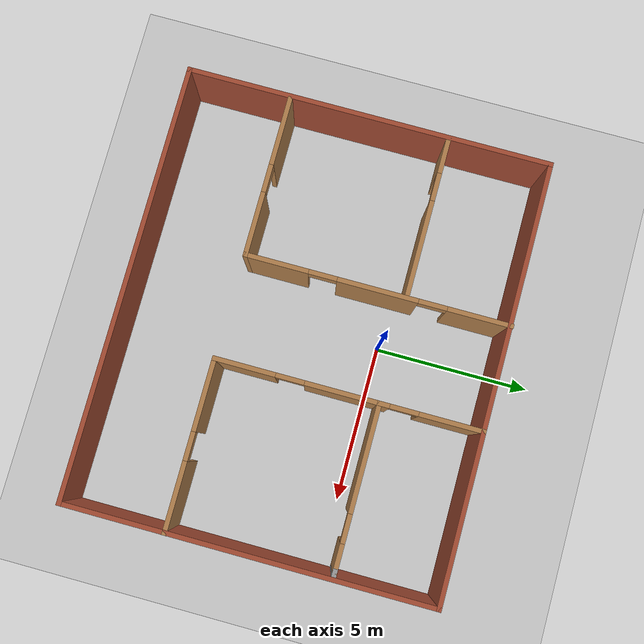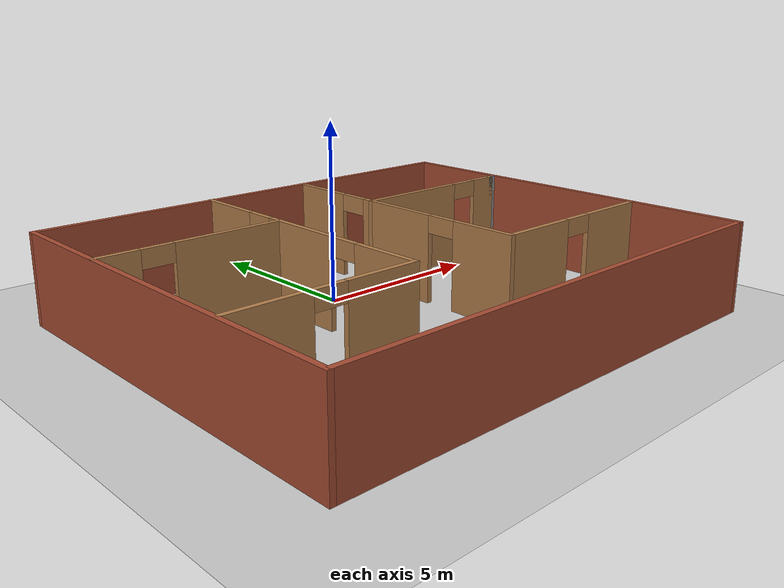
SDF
<sdf version="1.7">
 <world name="default">
  <light name="sun" type="directional">
   <pose>0 0 10 0 -0 0</pose>
   <diffuse>0.8 0.8 0.8 1</diffuse>
   <specular>0.2 0.2 0.2 1</specular>
   <attenuation>
    <range>1000</range>
    <constant>0.9</constant>
    <linear>0.01</linear>
    <quadratic>0.001</quadratic>
   </attenuation>
   <direction>-0.5 0.1 -0.9</direction>
   <spot><inner_angle>0</inner_angle><outer_angle>0</outer_angle><falloff>0</falloff></spot>
  </light>
  <model name="ground_plane">
   <static>1</static>
   <link name="link">
    <collision name="collision">
     <geometry><plane><normal>0 0 1</normal><size>100 100</size></plane></geometry>
     <surface><friction><ode><mu>100</mu><mu2>50</mu2></ode></friction></surface>
    </collision>
    <visual name="visual">
     <cast_shadows>0</cast_shadows>
     <geometry><plane><normal>0 0 1</normal><size>100 100</size></plane></geometry>
     <material>
      <script><uri>file://media/materials/scripts/gazebo.material</uri><name>Gazebo/Grey</name></script>
     </material>
    </visual>
   </link>
  </model>
  <gravity>0 0 -9.8</gravity>
  <magnetic_field>6e-06 2.3e-05 -4.2e-05</magnetic_field>
  <atmosphere type="adiabatic"/>
  <physics type="ode">
   <max_step_size>0.001</max_step_size>
   <real_time_factor>1</real_time_factor>
   <real_time_update_rate>1000</real_time_update_rate>
  </physics>
  <scene><ambient>0.4 0.4 0.4 1</ambient><background>0.7 0.7 0.7 1</background><shadows>1</shadows></scene>
  <audio><device>default</device></audio>
  <spherical_coordinates>
   <surface_model>EARTH_WGS84</surface_model>
   <latitude_deg>0</latitude_deg>
   <longitude_deg>0</longitude_deg>
   <elevation>0</elevation>
   <heading_deg>0</heading_deg>
  </spherical_coordinates>
  <model name="my_floor">
   <pose>0.258296 -2.15374 0 0 -0 0</pose>
   <link name="Wall_11">
    <pose>-4.34645 2.54214 0 0 -0 0</pose>
    <visual name="Wall_11_Visual_0">
     <pose>-2.01715 0 1.25 0 -0 0</pose>
     <geometry><box><size>1.21569 0.15 2.5</size></box></geometry>
     <material>
      <script><uri>file://media/materials/scripts/gazebo.material</uri><name>Gazebo/Wood</name></script>
      <ambient>1 1 1 1</ambient>
     </material>
     <meta><layer>0</layer></meta>
    </visual>
    <collision name="Wall_11_Collision_0">
     <geometry><box><size>1.21569 0.15 2.5</size></box></geometry>
     <pose>-2.01715 0 1.25 0 -0 0</pose>
    </collision>
    <visual name="Wall_11_Visual_1">
     <pose>1.05785 0 1.25 0 -0 0</pose>
     <geometry><box><size>3.13431 0.15 2.5</size></box></geometry>
     <material>
      <script><uri>file://media/materials/scripts/gazebo.material</uri><name>Gazebo/Wood</name></script>
      <ambient>1 1 1 1</ambient>
     </material>
     <meta><layer>0</layer></meta>
    </visual>
    <collision name="Wall_11_Collision_1">
     <geometry><box><size>3.13431 0.15 2.5</size></box></geometry>
     <pose>1.05785 0 1.25 0 -0 0</pose>
    </collision>
    <visual name="Wall_11_Visual_2">
     <pose>-0.959308 0 2.25 0 -0 0</pose>
     <geometry><box><size>0.9 0.15 0.5</size></box></geometry>
     <material>
      <script><uri>file://media/materials/scripts/gazebo.material</uri><name>Gazebo/Wood</name></script>
      <ambient>1 1 1 1</ambient>
     </material>
     <meta><layer>0</layer></meta>
    </visual>
    <collision name="Wall_11_Collision_2">
     <geometry><box><size>0.9 0.15 0.5</size></box></geometry>
     <pose>-0.959308 0 2.25 0 -0 0</pose>
    </collision>
   </link>
   <link name="Wall_13">
    <pose>1.57704 1.6097 0 0 -0 -1.5708</pose>
    <visual name="Wall_13_Visual_0">
     <pose>-3.21389 0 1.25 0 -0 0</pose>
     <geometry><box><size>2.07222 0.15 2.5</size></box></geometry>
     <material>
      <script><uri>file://media/materials/scripts/gazebo.material</uri><name>Gazebo/Wood</name></script>
      <ambient>1 1 1 1</ambient>
     </material>
     <meta><layer>0</layer></meta>
    </visual>
    <collision name="Wall_13_Collision_0">
     <geometry><box><size>2.07222 0.15 2.5</size></box></geometry>
     <pose>-3.21389 0 1.25 0 -0 0</pose>
    </collision>
    <visual name="Wall_13_Visual_1">
     <pose>0.046452 0 1.25 0 -0 0</pose>
     <geometry><box><size>2.64847 0.15 2.5</size></box></geometry>
     <material>
      <script><uri>file://media/materials/scripts/gazebo.material</uri><name>Gazebo/Wood</name></script>
      <ambient>1 1 1 1</ambient>
     </material>
     <meta><layer>0</layer></meta>
    </visual>
    <collision name="Wall_13_Collision_1">
     <geometry><box><size>2.64847 0.15 2.5</size></box></geometry>
     <pose>0.046452 0 1.25 0 -0 0</pose>
    </collision>
    <visual name="Wall_13_Visual_2">
     <pose>3.26034 0 1.25 0 -0 0</pose>
     <geometry><box><size>1.97931 0.15 2.5</size></box></geometry>
     <material>
      <script><uri>file://media/materials/scripts/gazebo.material</uri><name>Gazebo/Wood</name></script>
      <ambient>1 1 1 1</ambient>
     </material>
     <meta><layer>0</layer></meta>
    </visual>
    <collision name="Wall_13_Collision_2">
     <geometry><box><size>1.97931 0.15 2.5</size></box></geometry>
     <pose>3.26034 0 1.25 0 -0 0</pose>
    </collision>
    <visual name="Wall_13_Visual_3">
     <pose>-1.72778 0 2.25 0 -0 0</pose>
     <geometry><box><size>0.9 0.15 0.5</size></box></geometry>
     <material>
      <script><uri>file://media/materials/scripts/gazebo.material</uri><name>Gazebo/Wood</name></script>
      <ambient>1 1 1 1</ambient>
     </material>
     <meta><layer>0</layer></meta>
    </visual>
    <collision name="Wall_13_Collision_3">
     <geometry><box><size>0.9 0.15 0.5</size></box></geometry>
     <pose>-1.72778 0 2.25 0 -0 0</pose>
    </collision>
    <visual name="Wall_13_Visual_4">
     <pose>1.82069 0 2.25 0 -0 0</pose>
     <geometry><box><size>0.9 0.15 0.5</size></box></geometry>
     <material>
      <script><uri>file://media/materials/scripts/gazebo.material</uri><name>Gazebo/Wood</name></script>
      <ambient>1 1 1 1</ambient>
     </material>
     <meta><layer>0</layer></meta>
    </visual>
    <collision name="Wall_13_Collision_4">
     <geometry><box><size>0.9 0.15 0.5</size></box></geometry>
     <pose>1.82069 0 2.25 0 -0 0</pose>
    </collision>
   </link>
   <link name="Wall_14">
    <pose>4.25204 -2.56529 0 0 -0 0</pose>
    <visual name="Wall_14_Visual_0">
     <pose>-1.57624 0 1.25 0 -0 0</pose>
     <geometry><box><size>2.34753 0.15 2.5</size></box></geometry>
     <material>
      <script><uri>file://media/materials/scripts/gazebo.material</uri><name>Gazebo/Wood</name></script>
      <ambient>1 1 1 1</ambient>
     </material>
     <meta><layer>0</layer></meta>
    </visual>
    <collision name="Wall_14_Collision_0">
     <geometry><box><size>2.34753 0.15 2.5</size></box></geometry>
     <pose>-1.57624 0 1.25 0 -0 0</pose>
    </collision>
    <visual name="Wall_14_Visual_1">
     <pose>1.62376 0 1.25 0 -0 0</pose>
     <geometry><box><size>2.25247 0.15 2.5</size></box></geometry>
     <material>
      <script><uri>file://media/materials/scripts/gazebo.material</uri><name>Gazebo/Wood</name></script>
      <ambient>1 1 1 1</ambient>
     </material>
     <meta><layer>0</layer></meta>
    </visual>
    <collision name="Wall_14_Collision_1">
     <geometry><box><size>2.25247 0.15 2.5</size></box></geometry>
     <pose>1.62376 0 1.25 0 -0 0</pose>
    </collision>
    <visual name="Wall_14_Visual_2">
     <pose>0.04753 0 2.25 0 -0 0</pose>
     <geometry><box><size>0.9 0.15 0.5</size></box></geometry>
     <material>
      <script><uri>file://media/materials/scripts/gazebo.material</uri><name>Gazebo/Wood</name></script>
      <ambient>1 1 1 1</ambient>
     </material>
     <meta><layer>0</layer></meta>
    </visual>
    <collision name="Wall_14_Collision_2">
     <geometry><box><size>0.9 0.15 0.5</size></box></geometry>
     <pose>0.04753 0 2.25 0 -0 0</pose>
    </collision>
   </link>
   <link name="Wall_16">
    <pose>4.12704 2.57273 0 0 -0 0</pose>
    <visual name="Wall_16_Visual_0">
     <pose>-0.900611 0 1.25 0 -0 0</pose>
     <geometry><box><size>3.44878 0.15 2.5</size></box></geometry>
     <material>
      <script><uri>file://media/materials/scripts/gazebo.material</uri><name>Gazebo/Wood</name></script>
      <ambient>1 1 1 1</ambient>
     </material>
     <meta><layer>0</layer></meta>
    </visual>
    <collision name="Wall_16_Collision_0">
     <geometry><box><size>3.44878 0.15 2.5</size></box></geometry>
     <pose>-0.900611 0 1.25 0 -0 0</pose>
    </collision>
    <visual name="Wall_16_Visual_1">
     <pose>2.17439 0 1.25 0 -0 0</pose>
     <geometry><box><size>0.901222 0.15 2.5</size></box></geometry>
     <material>
      <script><uri>file://media/materials/scripts/gazebo.material</uri><name>Gazebo/Wood</name></script>
      <ambient>1 1 1 1</ambient>
     </material>
     <meta><layer>0</layer></meta>
    </visual>
    <collision name="Wall_16_Collision_1">
     <geometry><box><size>0.901222 0.15 2.5</size></box></geometry>
     <pose>2.17439 0 1.25 0 -0 0</pose>
    </collision>
    <visual name="Wall_16_Visual_2">
     <pose>1.27378 0 2.25 0 -0 0</pose>
     <geometry><box><size>0.9 0.15 0.5</size></box></geometry>
     <material>
      <script><uri>file://media/materials/scripts/gazebo.material</uri><name>Gazebo/Wood</name></script>
      <ambient>1 1 1 1</ambient>
     </material>
     <meta><layer>0</layer></meta>
    </visual>
    <collision name="Wall_16_Collision_2">
     <geometry><box><size>0.9 0.15 0.5</size></box></geometry>
     <pose>1.27378 0 2.25 0 -0 0</pose>
    </collision>
   </link>
   <link name="Wall_18">
    <collision name="Wall_18_Collision">
     <geometry><box><size>0.25 0.15 2.5</size></box></geometry>
     <pose>0 0 1.25 0 -0 0</pose>
    </collision>
    <visual name="Wall_18_Visual">
     <pose>0 0 1.25 0 -0 0</pose>
     <geometry><box><size>0.25 0.15 2.5</size></box></geometry>
     <material>
      <script><uri>file://media/materials/scripts/gazebo.material</uri><name>Gazebo/Grey</name></script>
      <ambient>1 1 1 1</ambient>
     </material>
     <meta><layer>0</layer></meta>
    </visual>
    <pose>6.72704 2.57273 0 0 -0 0</pose>
   </link>
   <link name="Wall_3">
    <collision name="Wall_3_Collision">
     <geometry><box><size>11.75 0.15 2.5</size></box></geometry>
     <pose>0 0 1.25 0 -0 0</pose>
    </collision>
    <visual name="Wall_3_Visual">
     <pose>0 0 1.25 0 -0 0</pose>
     <geometry><box><size>11.75 0.15 2.5</size></box></geometry>
     <material>
      <script><uri>file://media/materials/scripts/gazebo.material</uri><name>Gazebo/Bricks</name></script>
      <ambient>1 1 1 1</ambient>
     </material>
     <meta><layer>0</layer></meta>
    </visual>
    <pose>-6.92704 -0.015295 0 0 -0 -1.5708</pose>
   </link>
   <link name="Wall_4">
    <collision name="Wall_4_Collision">
     <geometry><box><size>14 0.15 2.5</size></box></geometry>
     <pose>0 0 1.25 0 -0 0</pose>
    </collision>
    <visual name="Wall_4_Visual">
     <pose>0 0 1.25 0 -0 0</pose>
     <geometry><box><size>14 0.15 2.5</size></box></geometry>
     <material>
      <script><uri>file://media/materials/scripts/gazebo.material</uri><name>Gazebo/Bricks</name></script>
      <ambient>1 1 1 1</ambient>
     </material>
     <meta><layer>0</layer></meta>
    </visual>
    <pose>-0.002042 -5.81529 0 0 -0 0</pose>
   </link>
   <link name="Wall_5">
    <collision name="Wall_5_Collision">
     <geometry><box><size>11.75 0.15 2.5</size></box></geometry>
     <pose>0 0 1.25 0 -0 0</pose>
    </collision>
    <visual name="Wall_5_Visual">
     <pose>0 0 1.25 0 -0 0</pose>
     <geometry><box><size>11.75 0.15 2.5</size></box></geometry>
     <material>
      <script><uri>file://media/materials/scripts/gazebo.material</uri><name>Gazebo/Bricks</name></script>
      <ambient>1 1 1 1</ambient>
     </material>
     <meta><layer>0</layer></meta>
    </visual>
    <pose>6.92296 -0.015295 0 0 -0 1.5708</pose>
   </link>
   <link name="Wall_6">
    <collision name="Wall_6_Collision">
     <geometry><box><size>14 0.15 2.5</size></box></geometry>
     <pose>0 0 1.25 0 -0 0</pose>
    </collision>
    <visual name="Wall_6_Visual">
     <pose>0 0 1.25 0 -0 0</pose>
     <geometry><box><size>14 0.15 2.5</size></box></geometry>
     <material>
      <script><uri>file://media/materials/scripts/gazebo.material</uri><name>Gazebo/Bricks</name></script>
      <ambient>1 1 1 1</ambient>
     </material>
     <meta><layer>0</layer></meta>
    </visual>
    <pose>-0.002042 5.7847 0 0 -0 3.14159</pose>
   </link>
   <link name="Wall_8">
    <pose>-1.7267 1.6403 0 0 -0 -1.5708</pose>
    <visual name="Wall_8_Visual_0">
     <pose>-3.21389 0 1.25 0 -0 0</pose>
     <geometry><box><size>2.07222 0.15 2.5</size></box></geometry>
     <material>
      <script><uri>file://media/materials/scripts/gazebo.material</uri><name>Gazebo/Wood</name></script>
      <ambient>1 1 1 1</ambient>
     </material>
     <meta><layer>0</layer></meta>
    </visual>
    <collision name="Wall_8_Collision_0">
     <geometry><box><size>2.07222 0.15 2.5</size></box></geometry>
     <pose>-3.21389 0 1.25 0 -0 0</pose>
    </collision>
    <visual name="Wall_8_Visual_1">
     <pose>0.000566 0 1.25 0 -0 0</pose>
     <geometry><box><size>2.5567 0.15 2.5</size></box></geometry>
     <material>
      <script><uri>file://media/materials/scripts/gazebo.material</uri><name>Gazebo/Wood</name></script>
      <ambient>1 1 1 1</ambient>
     </material>
     <meta><layer>0</layer></meta>
    </visual>
    <collision name="Wall_8_Collision_1">
     <geometry><box><size>2.5567 0.15 2.5</size></box></geometry>
     <pose>0.000566 0 1.25 0 -0 0</pose>
    </collision>
    <visual name="Wall_8_Visual_2">
     <pose>3.21446 0 1.25 0 -0 0</pose>
     <geometry><box><size>2.07109 0.15 2.5</size></box></geometry>
     <material>
      <script><uri>file://media/materials/scripts/gazebo.material</uri><name>Gazebo/Wood</name></script>
      <ambient>1 1 1 1</ambient>
     </material>
     <meta><layer>0</layer></meta>
    </visual>
    <collision name="Wall_8_Collision_2">
     <geometry><box><size>2.07109 0.15 2.5</size></box></geometry>
     <pose>3.21446 0 1.25 0 -0 0</pose>
    </collision>
    <visual name="Wall_8_Visual_3">
     <pose>-1.72778 0 2.25 0 -0 0</pose>
     <geometry><box><size>0.9 0.15 0.5</size></box></geometry>
     <material>
      <script><uri>file://media/materials/scripts/gazebo.material</uri><name>Gazebo/Wood</name></script>
      <ambient>1 1 1 1</ambient>
     </material>
     <meta><layer>0</layer></meta>
    </visual>
    <collision name="Wall_8_Collision_3">
     <geometry><box><size>0.9 0.15 0.5</size></box></geometry>
     <pose>-1.72778 0 2.25 0 -0 0</pose>
    </collision>
    <visual name="Wall_8_Visual_4">
     <pose>1.72891 0 2.25 0 -0 0</pose>
     <geometry><box><size>0.9 0.15 0.5</size></box></geometry>
     <material>
      <script><uri>file://media/materials/scripts/gazebo.material</uri><name>Gazebo/Wood</name></script>
      <ambient>1 1 1 1</ambient>
     </material>
     <meta><layer>0</layer></meta>
    </visual>
    <collision name="Wall_8_Collision_4">
     <geometry><box><size>0.9 0.15 0.5</size></box></geometry>
     <pose>1.72891 0 2.25 0 -0 0</pose>
    </collision>
   </link>
   <link name="Wall_9">
    <pose>-4.2767 -2.53471 0 0 -0 3.14159</pose>
    <visual name="Wall_9_Visual_0">
     <pose>-1.5736 0 1.25 0 -0 0</pose>
     <geometry><box><size>2.10281 0.15 2.5</size></box></geometry>
     <material>
      <script><uri>file://media/materials/scripts/gazebo.material</uri><name>Gazebo/Wood</name></script>
      <ambient>1 1 1 1</ambient>
     </material>
     <meta><layer>0</layer></meta>
    </visual>
    <collision name="Wall_9_Collision_0">
     <geometry><box><size>2.10281 0.15 2.5</size></box></geometry>
     <pose>-1.5736 0 1.25 0 -0 0</pose>
    </collision>
    <visual name="Wall_9_Visual_1">
     <pose>1.5014 0 1.25 0 -0 0</pose>
     <geometry><box><size>2.24719 0.15 2.5</size></box></geometry>
     <material>
      <script><uri>file://media/materials/scripts/gazebo.material</uri><name>Gazebo/Wood</name></script>
      <ambient>1 1 1 1</ambient>
     </material>
     <meta><layer>0</layer></meta>
    </visual>
    <collision name="Wall_9_Collision_1">
     <geometry><box><size>2.24719 0.15 2.5</size></box></geometry>
     <pose>1.5014 0 1.25 0 -0 0</pose>
    </collision>
    <visual name="Wall_9_Visual_2">
     <pose>-0.072191 0 2.25 0 -0 0</pose>
     <geometry><box><size>0.9 0.15 0.5</size></box></geometry>
     <material>
      <script><uri>file://media/materials/scripts/gazebo.material</uri><name>Gazebo/Wood</name></script>
      <ambient>1 1 1 1</ambient>
     </material>
     <meta><layer>0</layer></meta>
    </visual>
    <collision name="Wall_9_Collision_2">
     <geometry><box><size>0.9 0.15 0.5</size></box></geometry>
     <pose>-0.072191 0 2.25 0 -0 0</pose>
    </collision>
   </link>
   <static>1</static>
  </model>
 </world>
</sdf>
